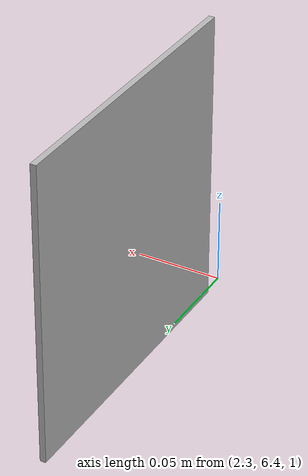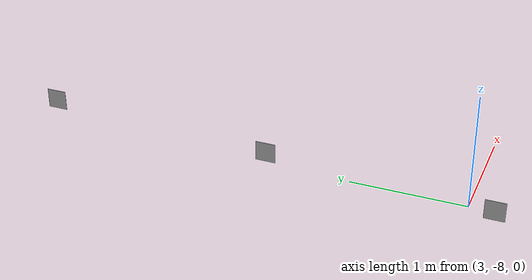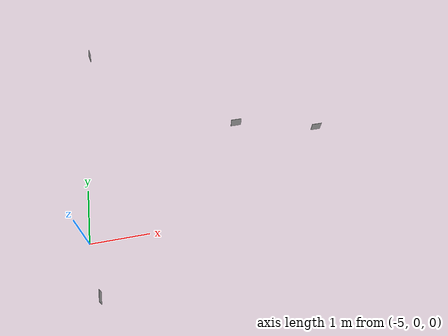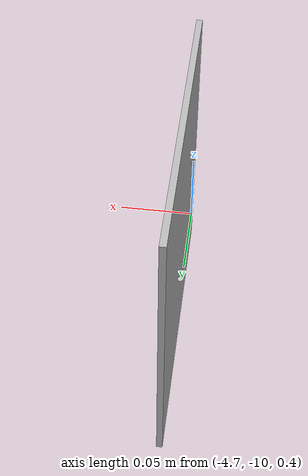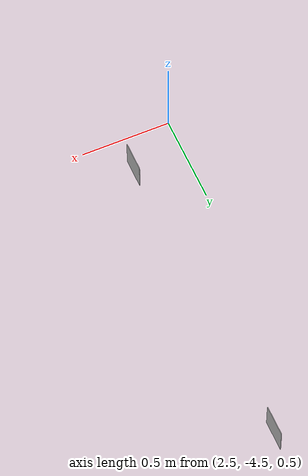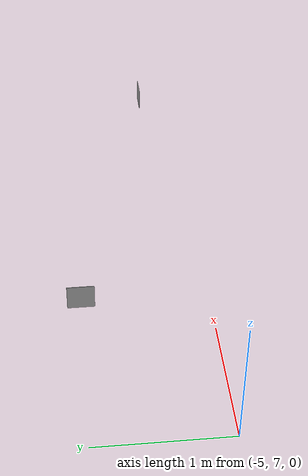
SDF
<sdf version="1.6">
 <world name="default">
  <gravity>0 0 -9.8</gravity>
  <physics name="default_physics" default="0" type="ode">
   <max_step_size>0.001</max_step_size>
   <real_time_factor>1</real_time_factor>
   <real_time_update_rate>1000</real_time_update_rate>
  </physics>
  <light name="Warehouse_CeilingLight_003" type="point">
   <pose>0 0 9 0 -0 0</pose>
   <diffuse>0.5 0.5 0.5 1</diffuse>
   <specular>0.2 0.2 0.2 1</specular>
   <attenuation>
    <range>80</range>
    <constant>0.3</constant>
    <linear>0.01</linear>
    <quadratic>0.001</quadratic>
   </attenuation>
   <direction>0.1 0.1 -1</direction>
  </light>
  <magnetic_field>6e-06 2.3e-05 -4.2e-05</magnetic_field>
  <atmosphere type="adiabatic"/>
  <scene><ambient>0.4 0.4 0.4 1</ambient><background>0.7 0.7 0.7 1</background><shadows>1</shadows></scene>
  <audio><device>default</device></audio>
  <spherical_coordinates>
   <surface_model>EARTH_WGS84</surface_model>
   <latitude_deg>0</latitude_deg>
   <longitude_deg>0</longitude_deg>
   <elevation>0</elevation>
   <heading_deg>0</heading_deg>
  </spherical_coordinates>
  <model name="MarkerData_3">
   <static>1</static>
   <link name="link">
    <visual name="visual">
     <geometry>
      <mesh><uri>model://markerdata_3/meshes/MarkerData_3.dae</uri><scale>0.34 0.34 0.34</scale></mesh>
     </geometry>
    </visual>
   </link>
   <pose>2.75 -8.25 0.1 0 -0 3.1415</pose>
  </model>
  <model name="MarkerData_4">
   <static>1</static>
   <link name="link">
    <visual name="visual">
     <geometry>
      <mesh><uri>model://markerdata_4/meshes/MarkerData_4.dae</uri><scale>0.34 0.34 0.34</scale></mesh>
     </geometry>
    </visual>
   </link>
   <pose>2.75 -6.35 0.2 0 -0 3.1415</pose>
  </model>
  <model name="MarkerData_5">
   <static>1</static>
   <link name="link">
    <visual name="visual">
     <geometry>
      <mesh><uri>model://markerdata_5/meshes/MarkerData_5.dae</uri><scale>0.34 0.34 0.34</scale></mesh>
     </geometry>
    </visual>
   </link>
   <pose>2.75 -4.4 0.3 0 -0 3.1415</pose>
  </model>
  <model name="MarkerData_6">
   <static>1</static>
   <link name="link">
    <visual name="visual">
     <geometry>
      <mesh><uri>model://markerdata_6/meshes/MarkerData_6.dae</uri><scale>0.34 0.34 0.34</scale></mesh>
     </geometry>
    </visual>
   </link>
   <pose>2.75 -2.6 0.4 0 -0 3.1415</pose>
  </model>
  <model name="MarkerData_10">
   <static>1</static>
   <link name="link">
    <visual name="visual">
     <geometry>
      <mesh><uri>model://markerdata_10/meshes/MarkerData_10.dae</uri><scale>0.34 0.34 0.34</scale></mesh>
     </geometry>
    </visual>
   </link>
   <pose>2.3 6.5 1 0 -0 3.1415</pose>
  </model>
  <model name="MarkerData_11">
   <static>1</static>
   <link name="link">
    <visual name="visual">
     <geometry>
      <mesh><uri>model://markerdata_11/meshes/MarkerData_11.dae</uri><scale>0.34 0.34 0.34</scale></mesh>
     </geometry>
    </visual>
   </link>
   <pose>-1.7 7.35 0.5 0 0 -1.57</pose>
  </model>
  <model name="MarkerData_12">
   <static>1</static>
   <link name="link">
    <visual name="visual">
     <geometry>
      <mesh><uri>model://markerdata_12/meshes/MarkerData_12.dae</uri><scale>0.34 0.34 0.34</scale></mesh>
     </geometry>
    </visual>
   </link>
   <pose>-4.7 8 1 0 -0 0</pose>
  </model>
  <model name="MarkerData_13">
   <static>1</static>
   <link name="link">
    <visual name="visual">
     <geometry>
      <mesh><uri>model://markerdata_13/meshes/MarkerData_13.dae</uri><scale>0.34 0.34 0.34</scale></mesh>
     </geometry>
    </visual>
   </link>
   <pose>-4.7 3.4 0.85 0 -0 0</pose>
  </model>
  <model name="MarkerData_14">
   <static>1</static>
   <link name="link">
    <visual name="visual">
     <geometry>
      <mesh><uri>model://markerdata_14/meshes/MarkerData_14.dae</uri><scale>0.34 0.34 0.34</scale></mesh>
     </geometry>
    </visual>
   </link>
   <pose>-4.7 -1.1 0.7 0 -0 0</pose>
  </model>
  <model name="MarkerData_15">
   <static>1</static>
   <link name="link">
    <visual name="visual">
     <geometry>
      <mesh><uri>model://markerdata_15/meshes/MarkerData_15.dae</uri><scale>0.34 0.34 0.34</scale></mesh>
     </geometry>
    </visual>
   </link>
   <pose>-4.7 -5.4 0.55 0 -0 0</pose>
  </model>
  <model name="MarkerData_16">
   <static>1</static>
   <link name="link">
    <visual name="visual">
     <geometry>
      <mesh><uri>model://markerdata_16/meshes/MarkerData_16.dae</uri><scale>0.34 0.34 0.34</scale></mesh>
     </geometry>
    </visual>
   </link>
   <pose>-4.7 -9.9 0.4 0 -0 0</pose>
  </model>
  <model name="MarkerData_17">
   <static>1</static>
   <link name="link">
    <visual name="visual">
     <geometry>
      <mesh><uri>model://markerdata_17/meshes/MarkerData_17.dae</uri><scale>0.34 0.34 0.34</scale></mesh>
     </geometry>
    </visual>
   </link>
   <pose>-2.3 1.25 1 0 0 -1.57</pose>
  </model>
  <model name="MarkerData_18">
   <static>1</static>
   <link name="link">
    <visual name="visual">
     <geometry>
      <mesh><uri>model://markerdata_18/meshes/MarkerData_18.dae</uri><scale>0.34 0.34 0.34</scale></mesh>
     </geometry>
    </visual>
   </link>
   <pose>-0.8 1.25 0.5 0 0 -1.57</pose>
  </model>
 </world>
</sdf>
